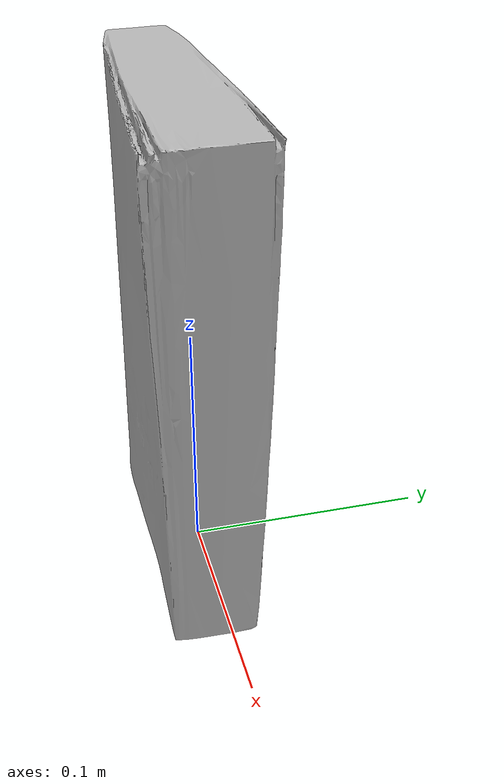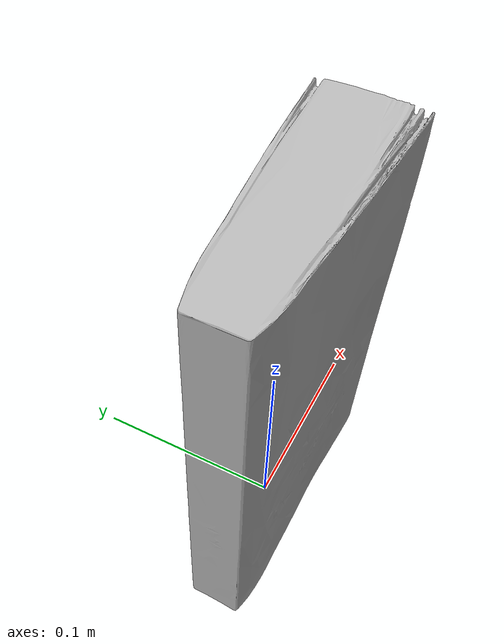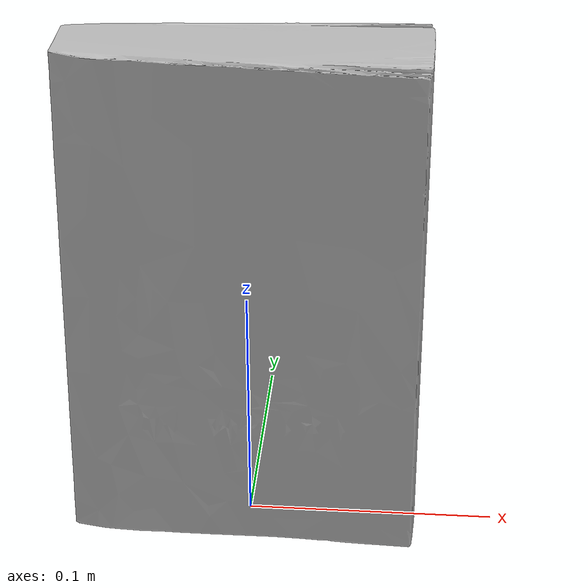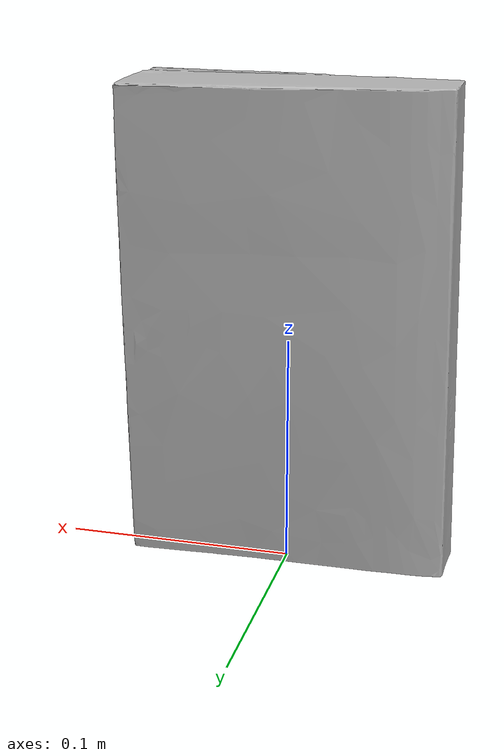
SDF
<?xml version="1.0"?>
<sdf version="1.9">
  <model name="colored_book_yellow">
    <static>true</static>
    <link name="link">
      <inertial>
        <mass>0.3</mass>
      </inertial>
      <collision name="collision">
        <geometry>
          <mesh>
            <uri>meshes/book_yellow.obj</uri>
          </mesh>
        </geometry>
      </collision>
      <visual name="visual">
        <geometry>
          <mesh>
            <uri>meshes/book_yellow.obj</uri>
          </mesh>
        </geometry>
      </visual>
    </link>
  </model>
</sdf>
